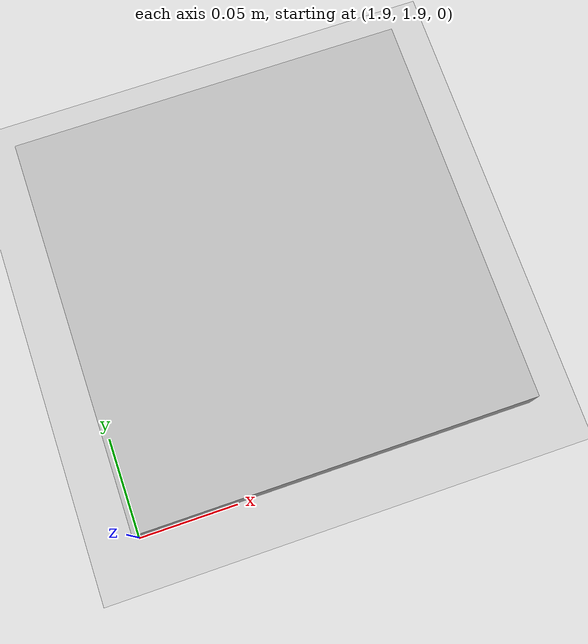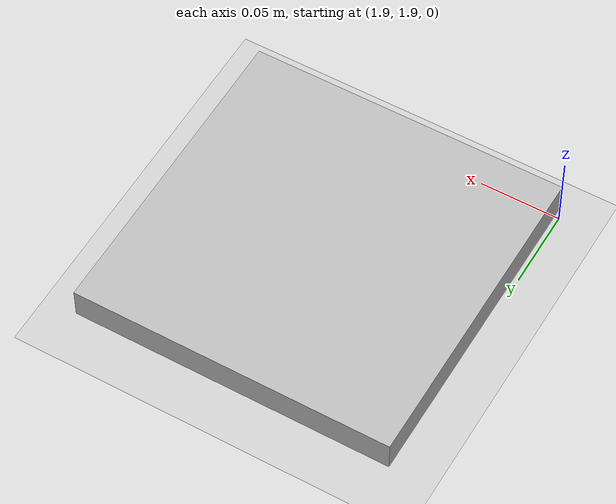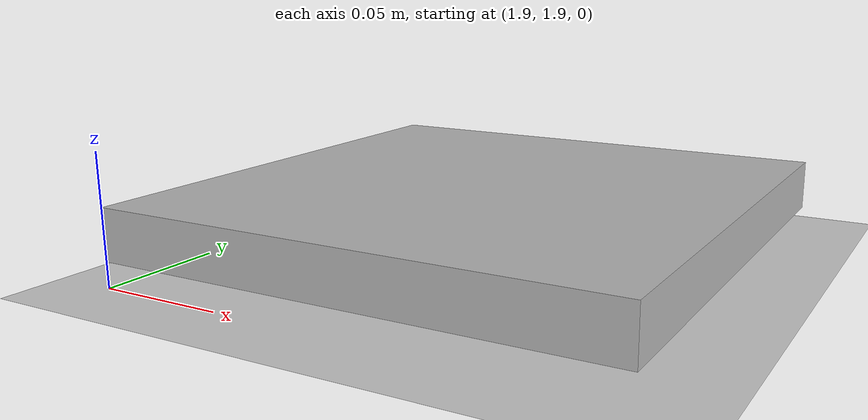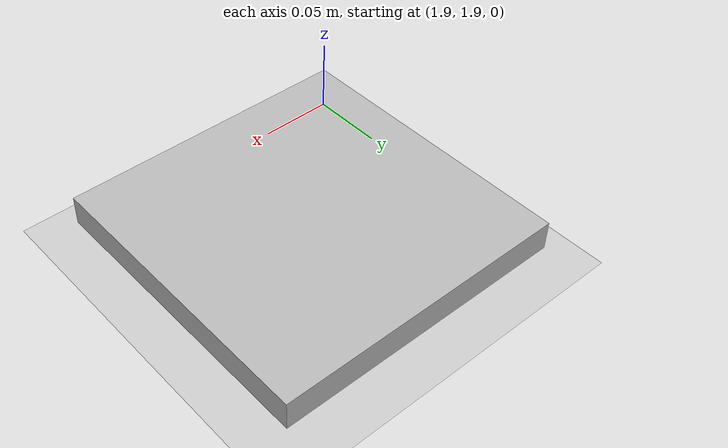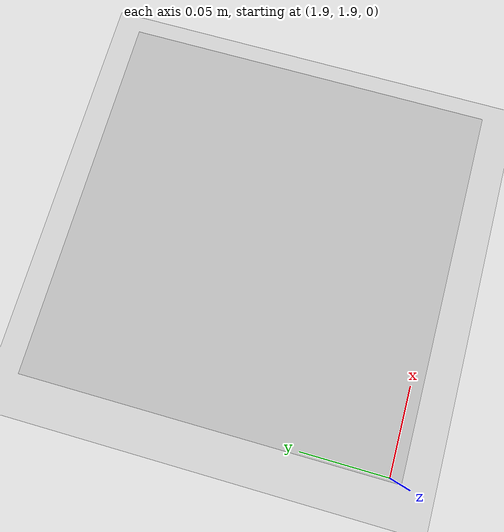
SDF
<?xml version="1.0" ?>
<sdf version="1.5">
  <world name="default">
    <!-- A global light source -->
    <include>
      <uri>model://sun</uri>
    </include>
    <!-- A ground plane -->
    <include>
      <uri>model://ground_plane</uri>
    </include>

    <!-- 地板换为纯色的,tigao aruco码的识别能力，所以注释掉这个有纹理的地板 -->

    <!-- 包含进来二维码的模型 -->
    <include>
      <name> aruco target </name>
        <uri>model://aruco_target</uri>
	      <pose> 2.0 2.0 0.02 0 0 -1.5707963 </pose>
    </include>

    <physics name='default_physics' default='0' type='ode'>
      <gravity>0 0 -9.8066</gravity>
      <ode>
        <solver>
          <type>quick</type>
          <iters>10</iters>
          <sor>1.3</sor>
          <use_dynamic_moi_rescaling>0</use_dynamic_moi_rescaling>
        </solver>
        <constraints>
          <cfm>0</cfm>
          <erp>0.2</erp>
          <contact_max_correcting_vel>100</contact_max_correcting_vel>
          <contact_surface_layer>0.001</contact_surface_layer>
        </constraints>
      </ode>
      <max_step_size>0.004</max_step_size>
      <real_time_factor>1</real_time_factor>
      <real_time_update_rate>250</real_time_update_rate>
      <magnetic_field>6.0e-6 2.3e-5 -4.2e-5</magnetic_field>
    </physics>
  </world>
</sdf>

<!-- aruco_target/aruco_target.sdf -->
<sdf version="1.6">
  <model name="aruco_target">
    <pose>0 0 0.01 0 0 0</pose>
    <static>true</static>
    <link name="link">
      <inertial>
        <mass>0.5</mass>
        <inertia>
          <ixx>0.001</ixx>
          <ixy>0</ixy>
          <ixz>0</ixz>
          <iyy>0.001</iyy>
          <iyz>0</iyz>
          <izz>0.001</izz>
        </inertia>
      </inertial>
      <collision name="collision">
        <geometry>
          <box>
            <size>0.2 0.2 0.02</size>
          </box>
        </geometry>
      </collision>
      <visual name="visual">
        <geometry>
          <box>
            <size>0.2 0.2 0.02</size>
          </box>
        </geometry>
        <material>
          <script>
            <uri>model://aruco_target/materials/scripts</uri>
	          <uri>model://aruco_target/materials/textures</uri>
            <name>Cube/aruco_target</name>
          </script>
        </material>
      </visual>
    </link>

    <plugin name="p3d_base_controller" filename="libgazebo_ros_p3d.so">
      <alwaysOn>true</alwaysOn>
      <updateRate>30.0</updateRate>
      <bodyName>link</bodyName>
      <topicName>ground_truth/landing_pad</topicName>
      <gaussianNoise>0.00</gaussianNoise>
      <frameName>world</frameName>
      <xyzOffsets>0 0 0</xyzOffsets>
      <rpyOffsets>0 0 0</rpyOffsets>
    </plugin>
  </model>
</sdf>
